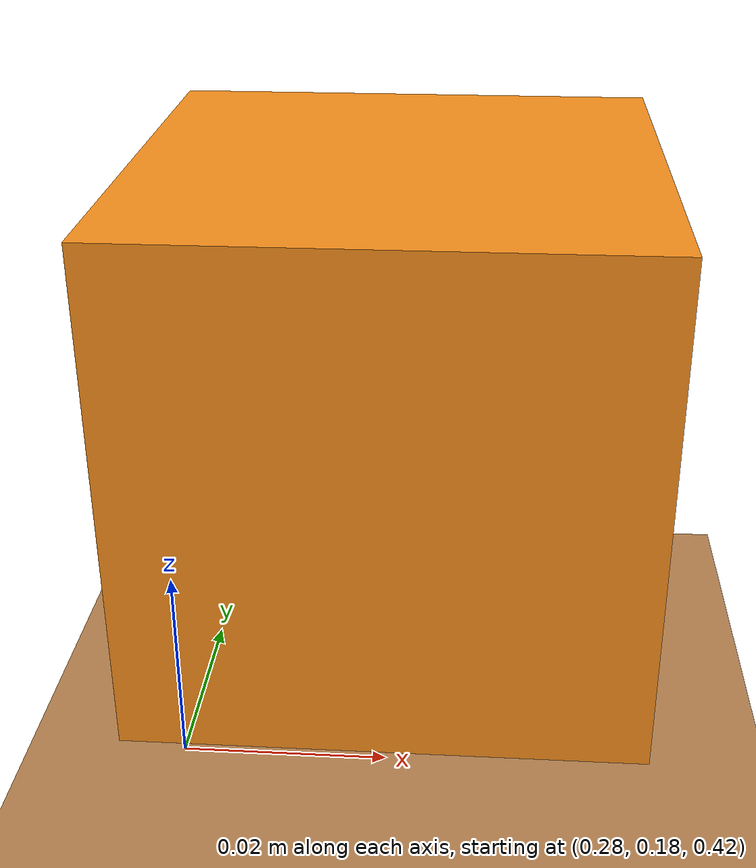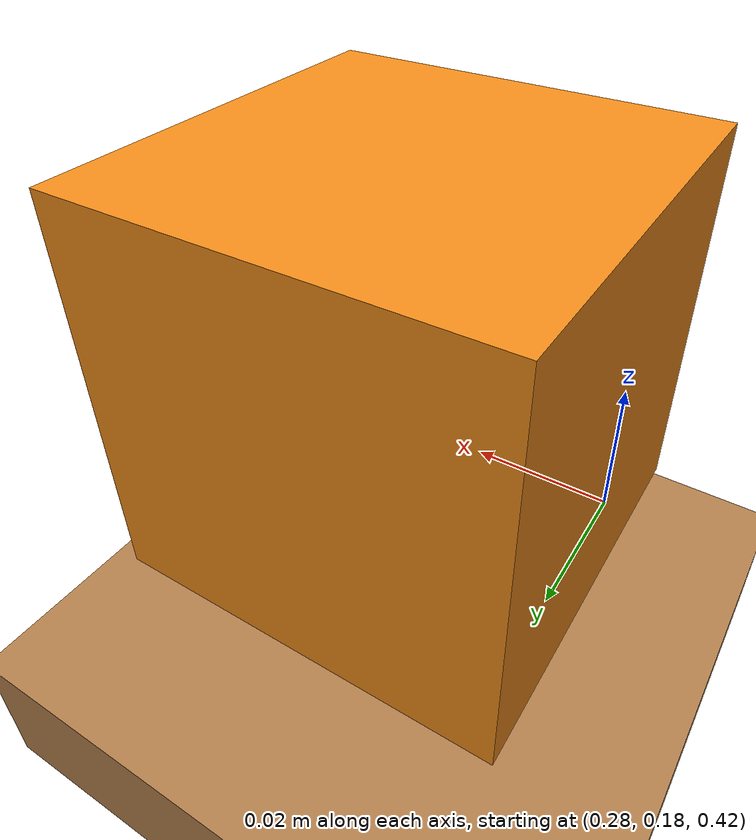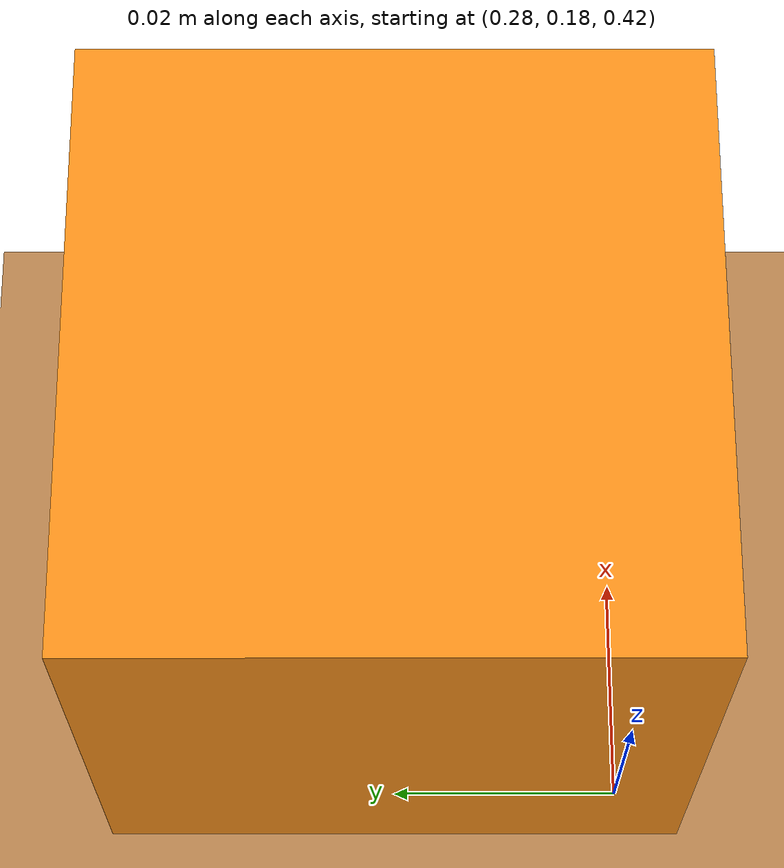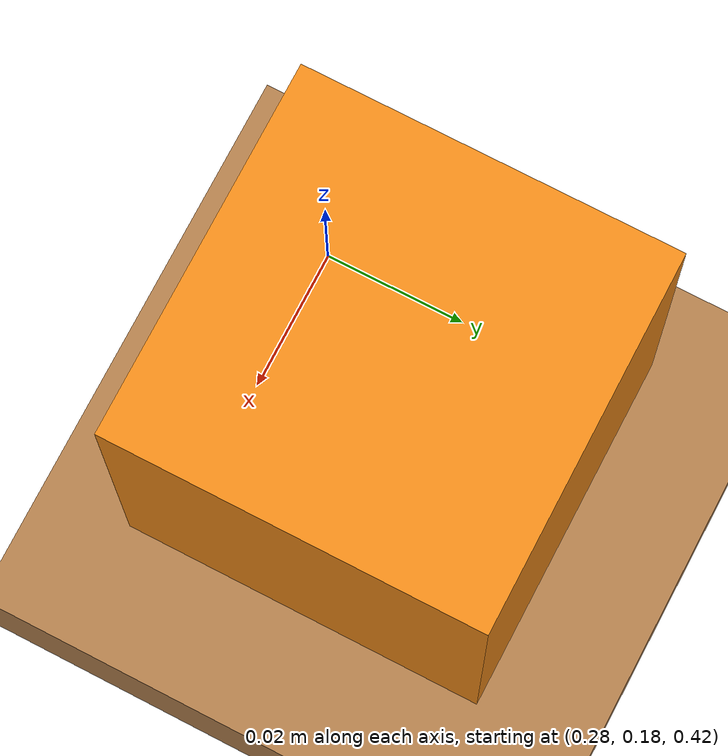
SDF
<?xml version="1.0" ?>
<sdf version="1.6">
  <world name="sample_world">

    <!-- Ground plane -->
    <include>
      <uri>model://ground_plane</uri>
    </include>

    <!-- Sun for lighting -->
    <include>
      <uri>model://sun</uri>
    </include>

    <!-- Simple table -->
    <model name="table">
      <static>true</static>
      <link name="table_link">
        <pose>0.5 0 0.4 0 0 0</pose>
        <collision name="table_collision">
          <geometry>
            <box>
              <size>0.8 0.8 0.02</size>
            </box>
          </geometry>
        </collision>
        <visual name="table_visual">
          <geometry>
            <box>
              <size>0.8 0.8 0.02</size>
            </box>
          </geometry>
          <material>
            <script>
              <name>Gazebo/Wood</name>
              <uri>file://media/materials/scripts/gazebo.material</uri>
            </script>
          </material>
        </visual>
      </link>
    </model>

    <!-- Simple box for interaction -->
    <model name="box">
      <pose>0.3 0.2 0.45 0 0 0</pose>
      <link name="box_link">
        <collision name="box_collision">
          <geometry>
            <box>
              <size>0.05 0.05 0.05</size>
            </box>
          </geometry>
        </collision>
        <visual name="box_visual">
          <geometry>
            <box>
              <size>0.05 0.05 0.05</size>
            </box>
          </geometry>
          <material>
            <script>
              <name>Gazebo/Orange</name>
              <uri>file://media/materials/scripts/gazebo.material</uri>
            </script>
          </material>
        </visual>
        <inertial>
          <mass>0.1</mass>
          <inertia>
            <ixx>0.000166667</ixx>
            <iyy>0.000166667</iyy>
            <izz>0.000166667</izz>
          </inertia>
        </inertial>
      </link>
    </model>

    <!-- Physics settings -->
    <physics type="ode">
      <max_step_size>0.001</max_step_size>
      <real_time_factor>1</real_time_factor>
      <real_time_update_rate>1000</real_time_update_rate>
    </physics>

  </world>
</sdf>
